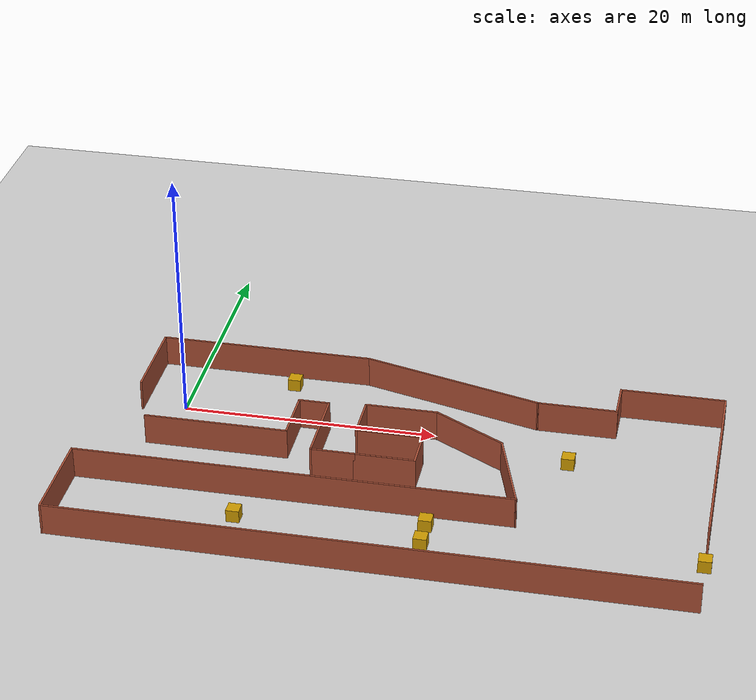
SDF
<sdf version="1.7">
 <world name="default">
  <light name="sun" type="directional">
   <pose>0 0 10 0 -0 0</pose>
   <diffuse>0.8 0.8 0.8 1</diffuse>
   <specular>0.2 0.2 0.2 1</specular>
   <attenuation>
    <range>1000</range>
    <constant>0.9</constant>
    <linear>0.01</linear>
    <quadratic>0.001</quadratic>
   </attenuation>
   <direction>-0.5 0.1 -0.9</direction>
   <spot><inner_angle>0</inner_angle><outer_angle>0</outer_angle><falloff>0</falloff></spot>
  </light>
  <model name="ground_plane">
   <static>1</static>
   <link name="link">
    <collision name="collision">
     <geometry><plane><normal>0 0 1</normal><size>100 100</size></plane></geometry>
     <surface>
      <contact><collide_bitmask>65535</collide_bitmask></contact>
      <friction><ode><mu>100</mu><mu2>50</mu2></ode></friction>
     </surface>
    </collision>
    <visual name="visual">
     <cast_shadows>0</cast_shadows>
     <geometry><plane><normal>0 0 1</normal><size>100 100</size></plane></geometry>
     <material>
      <script><uri>file://media/materials/scripts/gazebo.material</uri><name>Gazebo/Grey</name></script>
     </material>
    </visual>
   </link>
  </model>
  <gravity>0 0 -9.8</gravity>
  <magnetic_field>6e-06 2.3e-05 -4.2e-05</magnetic_field>
  <atmosphere type="adiabatic"/>
  <physics type="ode">
   <max_step_size>0.001</max_step_size>
   <real_time_factor>1</real_time_factor>
   <real_time_update_rate>1000</real_time_update_rate>
  </physics>
  <scene><ambient>0.4 0.4 0.4 1</ambient><background>0.7 0.7 0.7 1</background><shadows>1</shadows></scene>
  <spherical_coordinates>
   <surface_model>EARTH_WGS84</surface_model>
   <latitude_deg>0</latitude_deg>
   <longitude_deg>0</longitude_deg>
   <elevation>0</elevation>
   <heading_deg>0</heading_deg>
  </spherical_coordinates>
  <model name="map">
   <pose>18.0116 -5.77945 0 0 -0 0</pose>
   <link name="Wall_0">
    <collision name="Wall_0_Collision">
     <geometry><box><size>11.25 0.15 2.5</size></box></geometry>
     <pose>0 0 1.25 0 -0 0</pose>
    </collision>
    <visual name="Wall_0_Visual">
     <pose>0 0 1.25 0 -0 0</pose>
     <geometry><box><size>11.25 0.15 2.5</size></box></geometry>
     <material>
      <script><uri>file://media/materials/scripts/gazebo.material</uri><name>Gazebo/Bricks</name></script>
      <ambient>1 1 1 1</ambient>
     </material>
     <meta><layer>0</layer></meta>
    </visual>
    <pose>-14.15 0.727193 0 0 -0 0</pose>
   </link>
   <link name="Wall_1">
    <collision name="Wall_1_Collision">
     <geometry><box><size>4.5 0.15 2.5</size></box></geometry>
     <pose>0 0 1.25 0 -0 0</pose>
    </collision>
    <visual name="Wall_1_Visual">
     <pose>0 0 1.25 0 -0 0</pose>
     <geometry><box><size>4.5 0.15 2.5</size></box></geometry>
     <material>
      <script><uri>file://media/materials/scripts/gazebo.material</uri><name>Gazebo/Bricks</name></script>
      <ambient>1 1 1 1</ambient>
     </material>
     <meta><layer>0</layer></meta>
    </visual>
    <pose>-8.6 2.90219 0 0 -0 1.5708</pose>
   </link>
   <link name="Wall_10">
    <collision name="Wall_10_Collision">
     <geometry><box><size>3.75 0.15 2.5</size></box></geometry>
     <pose>0 0 1.25 0 -0 0</pose>
    </collision>
    <visual name="Wall_10_Visual">
     <pose>0 0 1.25 0 -0 0</pose>
     <geometry><box><size>3.75 0.15 2.5</size></box></geometry>
     <material>
      <script><uri>file://media/materials/scripts/gazebo.material</uri><name>Gazebo/Bricks</name></script>
      <ambient>1 1 1 1</ambient>
     </material>
     <meta><layer>0</layer></meta>
    </visual>
    <pose>-3.4 3.62719 0 0 -0 1.5708</pose>
   </link>
   <link name="Wall_11">
    <collision name="Wall_11_Collision">
     <geometry><box><size>5.75 0.15 2.5</size></box></geometry>
     <pose>0 0 1.25 0 -0 0</pose>
    </collision>
    <visual name="Wall_11_Visual">
     <pose>0 0 1.25 0 -0 0</pose>
     <geometry><box><size>5.75 0.15 2.5</size></box></geometry>
     <material>
      <script><uri>file://media/materials/scripts/gazebo.material</uri><name>Gazebo/Bricks</name></script>
      <ambient>1 1 1 1</ambient>
     </material>
     <meta><layer>0</layer></meta>
    </visual>
    <pose>-0.599999 5.42719 0 0 -0 0</pose>
   </link>
   <link name="Wall_14">
    <collision name="Wall_14_Collision">
     <geometry><box><size>33.75 0.15 2.5</size></box></geometry>
     <pose>0 0 1.25 0 -0 0</pose>
    </collision>
    <visual name="Wall_14_Visual">
     <pose>0 0 1.25 0 -0 0</pose>
     <geometry><box><size>33.75 0.15 2.5</size></box></geometry>
     <material>
      <script><uri>file://media/materials/scripts/gazebo.material</uri><name>Gazebo/Bricks</name></script>
      <ambient>1 1 1 1</ambient>
     </material>
     <meta><layer>0</layer></meta>
    </visual>
    <pose>-7 -4.67281 0 0 -0 3.14159</pose>
   </link>
   <link name="Wall_15">
    <collision name="Wall_15_Collision">
     <geometry><box><size>7.5 0.15 2.5</size></box></geometry>
     <pose>0 0 1.25 0 -0 0</pose>
    </collision>
    <visual name="Wall_15_Visual">
     <pose>0 0 1.25 0 -0 0</pose>
     <geometry><box><size>7.5 0.15 2.5</size></box></geometry>
     <material>
      <script><uri>file://media/materials/scripts/gazebo.material</uri><name>Gazebo/Bricks</name></script>
      <ambient>1 1 1 1</ambient>
     </material>
     <meta><layer>0</layer></meta>
    </visual>
    <pose>-23.8 -8.34781 0 0 -0 -1.5708</pose>
   </link>
   <link name="Wall_16">
    <collision name="Wall_16_Collision">
     <geometry><box><size>47.75 0.15 2.5</size></box></geometry>
     <pose>0 0 1.25 0 -0 0</pose>
    </collision>
    <visual name="Wall_16_Visual">
     <pose>0 0 1.25 0 -0 0</pose>
     <geometry><box><size>47.75 0.15 2.5</size></box></geometry>
     <material>
      <script><uri>file://media/materials/scripts/gazebo.material</uri><name>Gazebo/Bricks</name></script>
      <ambient>1 1 1 1</ambient>
     </material>
     <meta><layer>0</layer></meta>
    </visual>
    <pose>-1e-06 -12.0228 0 0 -0 0</pose>
   </link>
   <link name="Wall_18">
    <collision name="Wall_18_Collision">
     <geometry><box><size>8.25 0.15 2.5</size></box></geometry>
     <pose>0 0 1.25 0 -0 0</pose>
    </collision>
    <visual name="Wall_18_Visual">
     <pose>0 0 1.25 0 -0 0</pose>
     <geometry><box><size>8.25 0.15 2.5</size></box></geometry>
     <material>
      <script><uri>file://media/materials/scripts/gazebo.material</uri><name>Gazebo/Bricks</name></script>
      <ambient>1 1 1 1</ambient>
     </material>
     <meta><layer>0</layer></meta>
    </visual>
    <pose>19.75 11.3272 0 0 -0 3.14159</pose>
   </link>
   <link name="Wall_19">
    <collision name="Wall_19_Collision">
     <geometry><box><size>3.25 0.15 2.5</size></box></geometry>
     <pose>0 0 1.25 0 -0 0</pose>
    </collision>
    <visual name="Wall_19_Visual">
     <pose>0 0 1.25 0 -0 0</pose>
     <geometry><box><size>3.25 0.15 2.5</size></box></geometry>
     <material>
      <script><uri>file://media/materials/scripts/gazebo.material</uri><name>Gazebo/Bricks</name></script>
      <ambient>1 1 1 1</ambient>
     </material>
     <meta><layer>0</layer></meta>
    </visual>
    <pose>15.7 9.77719 0 0 -0 -1.5708</pose>
   </link>
   <link name="Wall_2">
    <collision name="Wall_2_Collision">
     <geometry><box><size>2.5 0.15 2.5</size></box></geometry>
     <pose>0 0 1.25 0 -0 0</pose>
    </collision>
    <visual name="Wall_2_Visual">
     <pose>0 0 1.25 0 -0 0</pose>
     <geometry><box><size>2.5 0.15 2.5</size></box></geometry>
     <material>
      <script><uri>file://media/materials/scripts/gazebo.material</uri><name>Gazebo/Bricks</name></script>
      <ambient>1 1 1 1</ambient>
     </material>
     <meta><layer>0</layer></meta>
    </visual>
    <pose>-7.425 5.07719 0 0 -0 0</pose>
   </link>
   <link name="Wall_20">
    <collision name="Wall_20_Collision">
     <geometry><box><size>6.25 0.15 2.5</size></box></geometry>
     <pose>0 0 1.25 0 -0 0</pose>
    </collision>
    <visual name="Wall_20_Visual">
     <pose>0 0 1.25 0 -0 0</pose>
     <geometry><box><size>6.25 0.15 2.5</size></box></geometry>
     <material>
      <script><uri>file://media/materials/scripts/gazebo.material</uri><name>Gazebo/Bricks</name></script>
      <ambient>1 1 1 1</ambient>
     </material>
     <meta><layer>0</layer></meta>
    </visual>
    <pose>12.65 8.22719 0 0 -0 3.14159</pose>
   </link>
   <link name="Wall_21">
    <collision name="Wall_21_Collision">
     <geometry><box><size>14.75 0.15 2.5</size></box></geometry>
     <pose>0 0 1.25 0 -0 0</pose>
    </collision>
    <visual name="Wall_21_Visual">
     <pose>0 0 1.25 0 -0 0</pose>
     <geometry><box><size>14.75 0.15 2.5</size></box></geometry>
     <material>
      <script><uri>file://media/materials/scripts/gazebo.material</uri><name>Gazebo/Bricks</name></script>
      <ambient>1 1 1 1</ambient>
     </material>
     <meta><layer>0</layer></meta>
    </visual>
    <pose>2.54874 10.1166 0 0 -0 2.87979</pose>
   </link>
   <link name="Wall_22">
    <collision name="Wall_22_Collision">
     <geometry><box><size>17 0.15 2.5</size></box></geometry>
     <pose>0 0 1.25 0 -0 0</pose>
    </collision>
    <visual name="Wall_22_Visual">
     <pose>0 0 1.25 0 -0 0</pose>
     <geometry><box><size>17 0.15 2.5</size></box></geometry>
     <material>
      <script><uri>file://media/materials/scripts/gazebo.material</uri><name>Gazebo/Bricks</name></script>
      <ambient>1 1 1 1</ambient>
     </material>
     <meta><layer>0</layer></meta>
    </visual>
    <pose>-12.9275 12.006 0 0 -0 3.14159</pose>
   </link>
   <link name="Wall_23">
    <collision name="Wall_23_Collision">
     <geometry><box><size>7 0.15 2.5</size></box></geometry>
     <pose>0 0 1.25 0 -0 0</pose>
    </collision>
    <visual name="Wall_23_Visual">
     <pose>0 0 1.25 0 -0 0</pose>
     <geometry><box><size>7 0.15 2.5</size></box></geometry>
     <material>
      <script><uri>file://media/materials/scripts/gazebo.material</uri><name>Gazebo/Bricks</name></script>
      <ambient>1 1 1 1</ambient>
     </material>
     <meta><layer>0</layer></meta>
    </visual>
    <pose>-21.3525 8.58095 0 0 -0 -1.5708</pose>
   </link>
   <link name="Wall_26">
    <collision name="Wall_26_Collision">
     <geometry><box><size>9.25 0.15 2.5</size></box></geometry>
     <pose>0 0 1.25 0 -0 0</pose>
    </collision>
    <visual name="Wall_26_Visual">
     <pose>0 0 1.25 0 -0 0</pose>
     <geometry><box><size>9.25 0.15 2.5</size></box></geometry>
     <material>
      <script><uri>file://media/materials/scripts/gazebo.material</uri><name>Gazebo/Bricks</name></script>
      <ambient>1 1 1 1</ambient>
     </material>
     <meta><layer>0</layer></meta>
    </visual>
    <pose>23.8 6.77719 0 0 -0 -1.5708</pose>
   </link>
   <link name="Wall_27">
    <collision name="Wall_27_Collision">
     <geometry><box><size>7.75 0.15 2.5</size></box></geometry>
     <pose>0 0 1.25 0 -0 0</pose>
    </collision>
    <visual name="Wall_27_Visual">
     <pose>0 0 1.25 0 -0 0</pose>
     <geometry><box><size>7.75 0.15 2.5</size></box></geometry>
     <material>
      <script><uri>file://media/materials/scripts/gazebo.material</uri><name>Gazebo/Bricks</name></script>
      <ambient>1 1 1 1</ambient>
     </material>
     <meta><layer>0</layer></meta>
    </visual>
    <pose>23.8 -1.57281 0 0 -0 -1.5708</pose>
   </link>
   <link name="Wall_29">
    <collision name="Wall_29_Collision">
     <geometry><box><size>6.5 0.15 2.5</size></box></geometry>
     <pose>0 0 1.25 0 -0 0</pose>
    </collision>
    <visual name="Wall_29_Visual">
     <pose>0 0 1.25 0 -0 0</pose>
     <geometry><box><size>6.5 0.15 2.5</size></box></geometry>
     <material>
      <script><uri>file://media/materials/scripts/gazebo.material</uri><name>Gazebo/Bricks</name></script>
      <ambient>1 1 1 1</ambient>
     </material>
     <meta><layer>0</layer></meta>
    </visual>
    <pose>4.94963 3.83969 0 0 -0 -0.523599</pose>
   </link>
   <link name="Wall_3">
    <collision name="Wall_3_Collision">
     <geometry><box><size>6.5 0.15 2.5</size></box></geometry>
     <pose>0 0 1.25 0 -0 0</pose>
    </collision>
    <visual name="Wall_3_Visual">
     <pose>0 0 1.25 0 -0 0</pose>
     <geometry><box><size>6.5 0.15 2.5</size></box></geometry>
     <material>
      <script><uri>file://media/materials/scripts/gazebo.material</uri><name>Gazebo/Bricks</name></script>
      <ambient>1 1 1 1</ambient>
     </material>
     <meta><layer>0</layer></meta>
    </visual>
    <pose>-6.25 1.90219 0 0 -0 -1.5708</pose>
   </link>
   <link name="Wall_33">
    <collision name="Wall_33_Collision">
     <geometry><box><size>7.38662 0.15 2.5</size></box></geometry>
     <pose>0 0 1.25 0 -0 0</pose>
    </collision>
    <visual name="Wall_33_Visual">
     <pose>0 0 1.25 0 -0 0</pose>
     <geometry><box><size>7.38662 0.15 2.5</size></box></geometry>
     <material>
      <script><uri>file://media/materials/scripts/gazebo.material</uri><name>Gazebo/Bricks</name></script>
      <ambient>1 1 1 1</ambient>
     </material>
     <meta><layer>0</layer></meta>
    </visual>
    <pose>8.74963 -1.21031 0 0 -0 -1.27626</pose>
   </link>
   <link name="Wall_4">
    <collision name="Wall_4_Collision">
     <geometry><box><size>3.5 0.15 2.5</size></box></geometry>
     <pose>0 0 1.25 0 -0 0</pose>
    </collision>
    <visual name="Wall_4_Visual">
     <pose>0 0 1.25 0 -0 0</pose>
     <geometry><box><size>3.5 0.15 2.5</size></box></geometry>
     <material>
      <script><uri>file://media/materials/scripts/gazebo.material</uri><name>Gazebo/Bricks</name></script>
      <ambient>1 1 1 1</ambient>
     </material>
     <meta><layer>0</layer></meta>
    </visual>
    <pose>-4.575 -1.27281 0 0 -0 0</pose>
   </link>
   <link name="Wall_7">
    <collision name="Wall_7_Collision">
     <geometry><box><size>4.75 0.15 2.5</size></box></geometry>
     <pose>0 0 1.25 0 -0 0</pose>
    </collision>
    <visual name="Wall_7_Visual">
     <pose>0 0 1.25 0 -0 0</pose>
     <geometry><box><size>4.75 0.15 2.5</size></box></geometry>
     <material>
      <script><uri>file://media/materials/scripts/gazebo.material</uri><name>Gazebo/Bricks</name></script>
      <ambient>1 1 1 1</ambient>
     </material>
     <meta><layer>0</layer></meta>
    </visual>
    <pose>-0.599999 -1.27281 0 0 -0 0</pose>
   </link>
   <link name="Wall_8">
    <collision name="Wall_8_Collision">
     <geometry><box><size>3.25 0.15 2.5</size></box></geometry>
     <pose>0 0 1.25 0 -0 0</pose>
    </collision>
    <visual name="Wall_8_Visual">
     <pose>0 0 1.25 0 -0 0</pose>
     <geometry><box><size>3.25 0.15 2.5</size></box></geometry>
     <material>
      <script><uri>file://media/materials/scripts/gazebo.material</uri><name>Gazebo/Bricks</name></script>
      <ambient>1 1 1 1</ambient>
     </material>
     <meta><layer>0</layer></meta>
    </visual>
    <pose>1.7 0.277193 0 0 -0 1.5708</pose>
   </link>
   <link name="Wall_9">
    <collision name="Wall_9_Collision">
     <geometry><box><size>5.25 0.15 2.5</size></box></geometry>
     <pose>0 0 1.25 0 -0 0</pose>
    </collision>
    <visual name="Wall_9_Visual">
     <pose>0 0 1.25 0 -0 0</pose>
     <geometry><box><size>5.25 0.15 2.5</size></box></geometry>
     <material>
      <script><uri>file://media/materials/scripts/gazebo.material</uri><name>Gazebo/Bricks</name></script>
      <ambient>1 1 1 1</ambient>
     </material>
     <meta><layer>0</layer></meta>
    </visual>
    <pose>-0.849999 1.82719 0 0 -0 3.14159</pose>
   </link>
   <static>1</static>
  </model>
  <model name="unit_box">
   <link name="link">
    <inertial>
     <mass>1</mass>
     <inertia>
      <ixx>0.166667</ixx>
      <ixy>0</ixy>
      <ixz>0</ixz>
      <iyy>0.166667</iyy>
      <iyz>0</iyz>
      <izz>0.166667</izz>
     </inertia>
    </inertial>
    <visual name="visual">
     <geometry><box><size>1 1 1</size></box></geometry>
     <material>
      <script><name>Gazebo/Grey</name><uri>file://media/materials/scripts/gazebo.material</uri></script>
      <shader type="pixel"><normal_map>__default__</normal_map></shader>
      <ambient>0.8 0.6 0 0</ambient>
      <diffuse>0.7 0.7 0.7 1</diffuse>
      <specular>0.01 0.01 0.01 1</specular>
      <emissive>0 0 0 1</emissive>
     </material>
    </visual>
    <collision name="collision">
     <geometry><box><size>1 1 1</size></box></geometry>
     <surface>
      <friction>
       <ode><mu>1</mu><mu2>1</mu2><fdir1>0 0 0</fdir1><slip1>0</slip1><slip2>0</slip2></ode>
       <torsional>
        <coefficient>1</coefficient>
        <patch_radius>0</patch_radius>
        <surface_radius>0</surface_radius>
        <use_patch_radius>1</use_patch_radius>
        <ode><slip>0</slip></ode>
       </torsional>
      </friction>
      <bounce><restitution_coefficient>0</restitution_coefficient><threshold>1e+06</threshold></bounce>
      <contact>
       <collide_without_contact>0</collide_without_contact>
       <collide_without_contact_bitmask>1</collide_without_contact_bitmask>
       <collide_bitmask>1</collide_bitmask>
       <ode>
        <soft_cfm>0</soft_cfm>
        <soft_erp>0.2</soft_erp>
        <kp>1e+13</kp>
        <kd>1</kd>
        <max_vel>0.01</max_vel>
        <min_depth>0</min_depth>
       </ode>
       <bullet>
        <split_impulse>1</split_impulse>
        <split_impulse_penetration_threshold>-0.01</split_impulse_penetration_threshold>
        <soft_cfm>0</soft_cfm>
        <soft_erp>0.2</soft_erp>
        <kp>1e+13</kp>
        <kd>1</kd>
       </bullet>
      </contact>
     </surface>
    </collision>
   </link>
   <static>0</static>
   <pose>30.624 -2.08569 0.5 0 -0 0</pose>
  </model>
  <model name="unit_box_clone">
   <link name="link">
    <inertial>
     <mass>1</mass>
     <inertia>
      <ixx>0.166667</ixx>
      <ixy>0</ixy>
      <ixz>0</ixz>
      <iyy>0.166667</iyy>
      <iyz>0</iyz>
      <izz>0.166667</izz>
     </inertia>
    </inertial>
    <visual name="visual">
     <geometry><box><size>1 1 1</size></box></geometry>
     <material>
      <script><name>Gazebo/Grey</name><uri>file://media/materials/scripts/gazebo.material</uri></script>
      <shader type="pixel"><normal_map>__default__</normal_map></shader>
      <ambient>0.8 0.6 0 0</ambient>
      <diffuse>0.7 0.7 0.7 1</diffuse>
      <specular>0.01 0.01 0.01 1</specular>
      <emissive>0 0 0 1</emissive>
     </material>
    </visual>
    <collision name="collision">
     <geometry><box><size>1 1 1</size></box></geometry>
     <surface>
      <friction>
       <ode><mu>1</mu><mu2>1</mu2><fdir1>0 0 0</fdir1><slip1>0</slip1><slip2>0</slip2></ode>
       <torsional>
        <coefficient>1</coefficient>
        <patch_radius>0</patch_radius>
        <surface_radius>0</surface_radius>
        <use_patch_radius>1</use_patch_radius>
        <ode><slip>0</slip></ode>
       </torsional>
      </friction>
      <bounce><restitution_coefficient>0</restitution_coefficient><threshold>1e+06</threshold></bounce>
      <contact>
       <collide_without_contact>0</collide_without_contact>
       <collide_without_contact_bitmask>1</collide_without_contact_bitmask>
       <collide_bitmask>1</collide_bitmask>
       <ode>
        <soft_cfm>0</soft_cfm>
        <soft_erp>0.2</soft_erp>
        <kp>1e+13</kp>
        <kd>1</kd>
        <max_vel>0.01</max_vel>
        <min_depth>0</min_depth>
       </ode>
       <bullet>
        <split_impulse>1</split_impulse>
        <split_impulse_penetration_threshold>-0.01</split_impulse_penetration_threshold>
        <soft_cfm>0</soft_cfm>
        <soft_erp>0.2</soft_erp>
        <kp>1e+13</kp>
        <kd>1</kd>
       </bullet>
      </contact>
     </surface>
    </collision>
   </link>
   <static>0</static>
   <pose>41.7645 -12.8028 0.5 0 -0 0</pose>
  </model>
  <model name="unit_box_clone_0">
   <link name="link">
    <inertial>
     <mass>1</mass>
     <inertia>
      <ixx>0.166667</ixx>
      <ixy>0</ixy>
      <ixz>0</ixz>
      <iyy>0.166667</iyy>
      <iyz>0</iyz>
      <izz>0.166667</izz>
     </inertia>
    </inertial>
    <visual name="visual">
     <geometry><box><size>1 1 1</size></box></geometry>
     <material>
      <script><name>Gazebo/Grey</name><uri>file://media/materials/scripts/gazebo.material</uri></script>
      <shader type="pixel"><normal_map>__default__</normal_map></shader>
      <ambient>0.8 0.6 0 0</ambient>
      <diffuse>0.7 0.7 0.7 1</diffuse>
      <specular>0.01 0.01 0.01 1</specular>
      <emissive>0 0 0 1</emissive>
     </material>
    </visual>
    <collision name="collision">
     <geometry><box><size>1 1 1</size></box></geometry>
     <surface>
      <friction>
       <ode><mu>1</mu><mu2>1</mu2><fdir1>0 0 0</fdir1><slip1>0</slip1><slip2>0</slip2></ode>
       <torsional>
        <coefficient>1</coefficient>
        <patch_radius>0</patch_radius>
        <surface_radius>0</surface_radius>
        <use_patch_radius>1</use_patch_radius>
        <ode><slip>0</slip></ode>
       </torsional>
      </friction>
      <bounce><restitution_coefficient>0</restitution_coefficient><threshold>1e+06</threshold></bounce>
      <contact>
       <collide_without_contact>0</collide_without_contact>
       <collide_without_contact_bitmask>1</collide_without_contact_bitmask>
       <collide_bitmask>1</collide_bitmask>
       <ode>
        <soft_cfm>0</soft_cfm>
        <soft_erp>0.2</soft_erp>
        <kp>1e+13</kp>
        <kd>1</kd>
        <max_vel>0.01</max_vel>
        <min_depth>0</min_depth>
       </ode>
       <bullet>
        <split_impulse>1</split_impulse>
        <split_impulse_penetration_threshold>-0.01</split_impulse_penetration_threshold>
        <soft_cfm>0</soft_cfm>
        <soft_erp>0.2</soft_erp>
        <kp>1e+13</kp>
        <kd>1</kd>
       </bullet>
      </contact>
     </surface>
    </collision>
   </link>
   <static>0</static>
   <pose>7.802 4.68497 0.5 0 -0 0</pose>
  </model>
  <model name="unit_box_clone_1">
   <link name="link">
    <inertial>
     <mass>1</mass>
     <inertia>
      <ixx>0.166667</ixx>
      <ixy>0</ixy>
      <ixz>0</ixz>
      <iyy>0.166667</iyy>
      <iyz>0</iyz>
      <izz>0.166667</izz>
     </inertia>
    </inertial>
    <visual name="visual">
     <geometry><box><size>1 1 1</size></box></geometry>
     <material>
      <script><name>Gazebo/Grey</name><uri>file://media/materials/scripts/gazebo.material</uri></script>
      <shader type="pixel"><normal_map>__default__</normal_map></shader>
      <ambient>0.8 0.6 0 0</ambient>
      <diffuse>0.7 0.7 0.7 1</diffuse>
      <specular>0.01 0.01 0.01 1</specular>
      <emissive>0 0 0 1</emissive>
     </material>
    </visual>
    <collision name="collision">
     <geometry><box><size>1 1 1</size></box></geometry>
     <surface>
      <friction>
       <ode><mu>1</mu><mu2>1</mu2><fdir1>0 0 0</fdir1><slip1>0</slip1><slip2>0</slip2></ode>
       <torsional>
        <coefficient>1</coefficient>
        <patch_radius>0</patch_radius>
        <surface_radius>0</surface_radius>
        <use_patch_radius>1</use_patch_radius>
        <ode><slip>0</slip></ode>
       </torsional>
      </friction>
      <bounce><restitution_coefficient>0</restitution_coefficient><threshold>1e+06</threshold></bounce>
      <contact>
       <collide_without_contact>0</collide_without_contact>
       <collide_without_contact_bitmask>1</collide_without_contact_bitmask>
       <collide_bitmask>1</collide_bitmask>
       <ode>
        <soft_cfm>0</soft_cfm>
        <soft_erp>0.2</soft_erp>
        <kp>1e+13</kp>
        <kd>1</kd>
        <max_vel>0.01</max_vel>
        <min_depth>0</min_depth>
       </ode>
       <bullet>
        <split_impulse>1</split_impulse>
        <split_impulse_penetration_threshold>-0.01</split_impulse_penetration_threshold>
        <soft_cfm>0</soft_cfm>
        <soft_erp>0.2</soft_erp>
        <kp>1e+13</kp>
        <kd>1</kd>
       </bullet>
      </contact>
     </surface>
    </collision>
   </link>
   <static>0</static>
   <pose>10.6376 0.889436 0.5 0 -0 0</pose>
  </model>
  <model name="unit_box_clone_2">
   <link name="link">
    <inertial>
     <mass>1</mass>
     <inertia>
      <ixx>0.166667</ixx>
      <ixy>0</ixy>
      <ixz>0</ixz>
      <iyy>0.166667</iyy>
      <iyz>0</iyz>
      <izz>0.166667</izz>
     </inertia>
    </inertial>
    <visual name="visual">
     <geometry><box><size>1 1 1</size></box></geometry>
     <material>
      <script><name>Gazebo/Grey</name><uri>file://media/materials/scripts/gazebo.material</uri></script>
      <shader type="pixel"><normal_map>__default__</normal_map></shader>
      <ambient>0.8 0.6 0 0</ambient>
      <diffuse>0.7 0.7 0.7 1</diffuse>
      <specular>0.01 0.01 0.01 1</specular>
      <emissive>0 0 0 1</emissive>
     </material>
    </visual>
    <collision name="collision">
     <geometry><box><size>1 1 1</size></box></geometry>
     <surface>
      <friction>
       <ode><mu>1</mu><mu2>1</mu2><fdir1>0 0 0</fdir1><slip1>0</slip1><slip2>0</slip2></ode>
       <torsional>
        <coefficient>1</coefficient>
        <patch_radius>0</patch_radius>
        <surface_radius>0</surface_radius>
        <use_patch_radius>1</use_patch_radius>
        <ode><slip>0</slip></ode>
       </torsional>
      </friction>
      <bounce><restitution_coefficient>0</restitution_coefficient><threshold>1e+06</threshold></bounce>
      <contact>
       <collide_without_contact>0</collide_without_contact>
       <collide_without_contact_bitmask>1</collide_without_contact_bitmask>
       <collide_bitmask>1</collide_bitmask>
       <ode>
        <soft_cfm>0</soft_cfm>
        <soft_erp>0.2</soft_erp>
        <kp>1e+13</kp>
        <kd>1</kd>
        <max_vel>0.01</max_vel>
        <min_depth>0</min_depth>
       </ode>
       <bullet>
        <split_impulse>1</split_impulse>
        <split_impulse_penetration_threshold>-0.01</split_impulse_penetration_threshold>
        <soft_cfm>0</soft_cfm>
        <soft_erp>0.2</soft_erp>
        <kp>1e+13</kp>
        <kd>1</kd>
       </bullet>
      </contact>
     </surface>
    </collision>
   </link>
   <static>0</static>
   <pose>21.4389 -11.8613 0.5 0 -0 0</pose>
  </model>
  <model name="unit_box_clone_3">
   <link name="link">
    <inertial>
     <mass>1</mass>
     <inertia>
      <ixx>0.166667</ixx>
      <ixy>0</ixy>
      <ixz>0</ixz>
      <iyy>0.166667</iyy>
      <iyz>0</iyz>
      <izz>0.166667</izz>
     </inertia>
    </inertial>
    <visual name="visual">
     <geometry><box><size>1 1 1</size></box></geometry>
     <material>
      <script><name>Gazebo/Grey</name><uri>file://media/materials/scripts/gazebo.material</uri></script>
      <shader type="pixel"><normal_map>__default__</normal_map></shader>
      <ambient>0.8 0.6 0 0</ambient>
      <diffuse>0.7 0.7 0.7 1</diffuse>
      <specular>0.01 0.01 0.01 1</specular>
      <emissive>0 0 0 1</emissive>
     </material>
    </visual>
    <collision name="collision">
     <geometry><box><size>1 1 1</size></box></geometry>
     <surface>
      <friction>
       <ode><mu>1</mu><mu2>1</mu2><fdir1>0 0 0</fdir1><slip1>0</slip1><slip2>0</slip2></ode>
       <torsional>
        <coefficient>1</coefficient>
        <patch_radius>0</patch_radius>
        <surface_radius>0</surface_radius>
        <use_patch_radius>1</use_patch_radius>
        <ode><slip>0</slip></ode>
       </torsional>
      </friction>
      <bounce><restitution_coefficient>0</restitution_coefficient><threshold>1e+06</threshold></bounce>
      <contact>
       <collide_without_contact>0</collide_without_contact>
       <collide_without_contact_bitmask>1</collide_without_contact_bitmask>
       <collide_bitmask>1</collide_bitmask>
       <ode>
        <soft_cfm>0</soft_cfm>
        <soft_erp>0.2</soft_erp>
        <kp>1e+13</kp>
        <kd>1</kd>
        <max_vel>0.01</max_vel>
        <min_depth>0</min_depth>
       </ode>
       <bullet>
        <split_impulse>1</split_impulse>
        <split_impulse_penetration_threshold>-0.01</split_impulse_penetration_threshold>
        <soft_cfm>0</soft_cfm>
        <soft_erp>0.2</soft_erp>
        <kp>1e+13</kp>
        <kd>1</kd>
       </bullet>
      </contact>
     </surface>
    </collision>
   </link>
   <static>0</static>
   <pose>21.4877 -14.1104 0.5 0 -0 0</pose>
  </model>
  <model name="unit_box_clone_4">
   <link name="link">
    <inertial>
     <mass>1</mass>
     <inertia>
      <ixx>0.166667</ixx>
      <ixy>0</ixy>
      <ixz>0</ixz>
      <iyy>0.166667</iyy>
      <iyz>0</iyz>
      <izz>0.166667</izz>
     </inertia>
    </inertial>
    <visual name="visual">
     <geometry><box><size>1 1 1</size></box></geometry>
     <material>
      <script><name>Gazebo/Grey</name><uri>file://media/materials/scripts/gazebo.material</uri></script>
      <shader type="pixel"><normal_map>__default__</normal_map></shader>
      <ambient>0.8 0.6 0 0</ambient>
      <diffuse>0.7 0.7 0.7 1</diffuse>
      <specular>0.01 0.01 0.01 1</specular>
      <emissive>0 0 0 1</emissive>
     </material>
    </visual>
    <collision name="collision">
     <geometry><box><size>1 1 1</size></box></geometry>
     <surface>
      <friction>
       <ode><mu>1</mu><mu2>1</mu2><fdir1>0 0 0</fdir1><slip1>0</slip1><slip2>0</slip2></ode>
       <torsional>
        <coefficient>1</coefficient>
        <patch_radius>0</patch_radius>
        <surface_radius>0</surface_radius>
        <use_patch_radius>1</use_patch_radius>
        <ode><slip>0</slip></ode>
       </torsional>
      </friction>
      <bounce><restitution_coefficient>0</restitution_coefficient><threshold>1e+06</threshold></bounce>
      <contact>
       <collide_without_contact>0</collide_without_contact>
       <collide_without_contact_bitmask>1</collide_without_contact_bitmask>
       <collide_bitmask>1</collide_bitmask>
       <ode>
        <soft_cfm>0</soft_cfm>
        <soft_erp>0.2</soft_erp>
        <kp>1e+13</kp>
        <kd>1</kd>
        <max_vel>0.01</max_vel>
        <min_depth>0</min_depth>
       </ode>
       <bullet>
        <split_impulse>1</split_impulse>
        <split_impulse_penetration_threshold>-0.01</split_impulse_penetration_threshold>
        <soft_cfm>0</soft_cfm>
        <soft_erp>0.2</soft_erp>
        <kp>1e+13</kp>
        <kd>1</kd>
       </bullet>
      </contact>
     </surface>
    </collision>
   </link>
   <static>0</static>
   <pose>16.7215 -16.6881 0.5 0 -0 0</pose>
  </model>
  <model name="unit_box_clone_5">
   <link name="link">
    <inertial>
     <mass>1</mass>
     <inertia>
      <ixx>0.166667</ixx>
      <ixy>0</ixy>
      <ixz>0</ixz>
      <iyy>0.166667</iyy>
      <iyz>0</iyz>
      <izz>0.166667</izz>
     </inertia>
    </inertial>
    <visual name="visual">
     <geometry><box><size>1 1 1</size></box></geometry>
     <material>
      <script><name>Gazebo/Grey</name><uri>file://media/materials/scripts/gazebo.material</uri></script>
      <shader type="pixel"><normal_map>__default__</normal_map></shader>
      <ambient>0.8 0.6 0 0</ambient>
      <diffuse>0.7 0.7 0.7 1</diffuse>
      <specular>0.01 0.01 0.01 1</specular>
      <emissive>0 0 0 1</emissive>
     </material>
    </visual>
    <collision name="collision">
     <geometry><box><size>1 1 1</size></box></geometry>
     <surface>
      <friction>
       <ode><mu>1</mu><mu2>1</mu2><fdir1>0 0 0</fdir1><slip1>0</slip1><slip2>0</slip2></ode>
       <torsional>
        <coefficient>1</coefficient>
        <patch_radius>0</patch_radius>
        <surface_radius>0</surface_radius>
        <use_patch_radius>1</use_patch_radius>
        <ode><slip>0</slip></ode>
       </torsional>
      </friction>
      <bounce><restitution_coefficient>0</restitution_coefficient><threshold>1e+06</threshold></bounce>
      <contact>
       <collide_without_contact>0</collide_without_contact>
       <collide_without_contact_bitmask>1</collide_without_contact_bitmask>
       <collide_bitmask>1</collide_bitmask>
       <ode>
        <soft_cfm>0</soft_cfm>
        <soft_erp>0.2</soft_erp>
        <kp>1e+13</kp>
        <kd>1</kd>
        <max_vel>0.01</max_vel>
        <min_depth>0</min_depth>
       </ode>
       <bullet>
        <split_impulse>1</split_impulse>
        <split_impulse_penetration_threshold>-0.01</split_impulse_penetration_threshold>
        <soft_cfm>0</soft_cfm>
        <soft_erp>0.2</soft_erp>
        <kp>1e+13</kp>
        <kd>1</kd>
       </bullet>
      </contact>
     </surface>
    </collision>
   </link>
   <static>0</static>
   <pose>7.4396 -13.3932 0.5 0 -0 0</pose>
  </model>
 </world>
</sdf>
